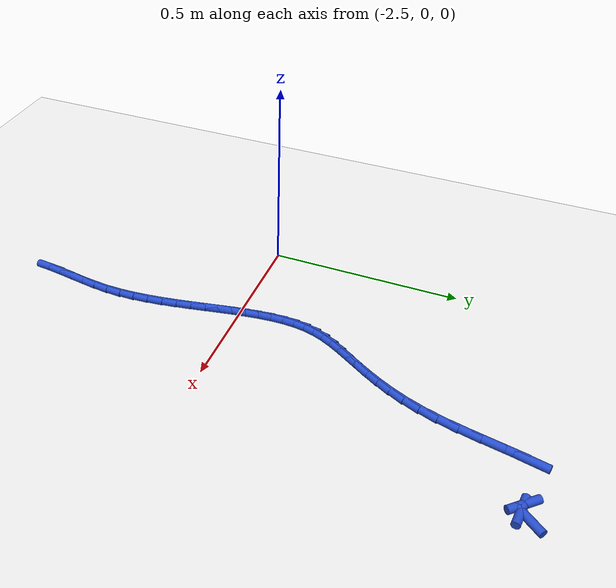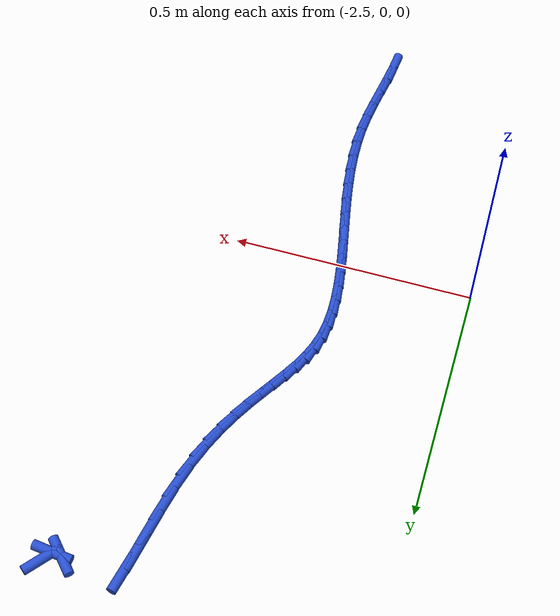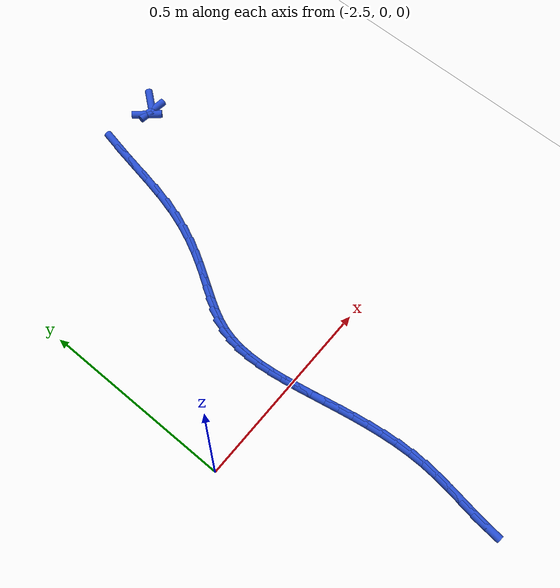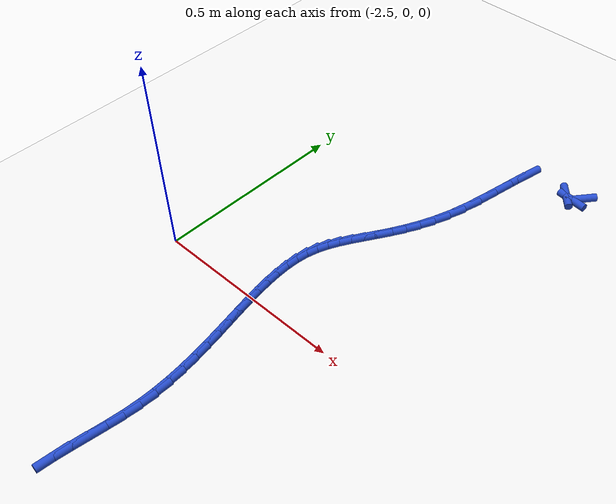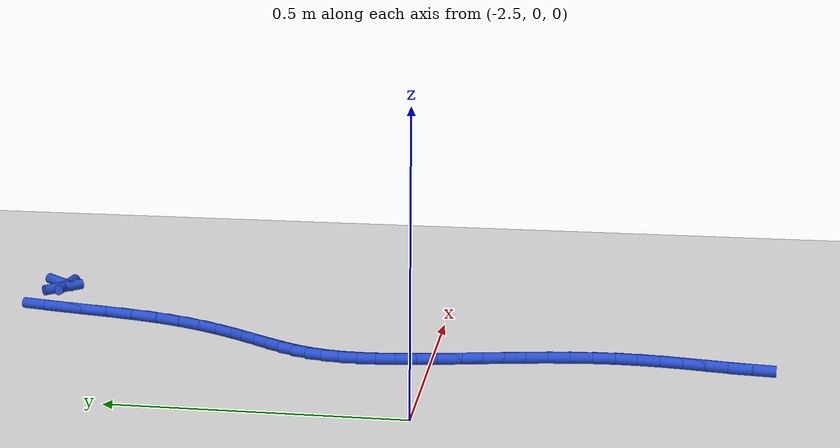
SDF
<sdf version="1.6">
 <world name="default">
  <model name="ground_plane">
   <static>1</static>
   <link name="link">
    <collision name="collision">
     <geometry><plane><normal>0 0 1</normal><size>100 100</size></plane></geometry>
     <surface><friction><ode><mu>100</mu><mu2>50</mu2></ode></friction></surface>
    </collision>
    <visual name="visual">
     <cast_shadows>0</cast_shadows>
     <geometry><plane><normal>0 0 1</normal><size>100 100</size></plane></geometry>
     <material>
      <script><uri>file://media/materials/scripts/gazebo.material</uri><name>Gazebo/WhiteGlow</name></script>
     </material>
    </visual>
   </link>
  </model>
  <model name="line">
   <link name="link_96">
    <pose>-1.8639385635588532 0.7850963636367804 0.01 0 1.57 0.8928345228396772</pose>
    <collision name="collision">
     <geometry><cylinder><radius>0.01</radius><length>0.08</length></cylinder></geometry>
    </collision>
    <visual name="visual">
     <material>
      <script><name>Gazebo/Blue</name><uri>file://media/materials/scripts/gazebo.material</uri></script>
     </material>
     <geometry><cylinder><radius>0.01</radius><length>0.08</length></cylinder></geometry>
    </visual>
   </link>
   <link name="link_97">
    <pose>-1.8784808262917239 0.7670380783018171 0.01 0 1.57 -0.11351821959854738</pose>
    <collision name="collision">
     <geometry><cylinder><radius>0.01</radius><length>0.08</length></cylinder></geometry>
    </collision>
    <visual name="visual">
     <material>
      <script><name>Gazebo/Blue</name><uri>file://media/materials/scripts/gazebo.material</uri></script>
     </material>
     <geometry><cylinder><radius>0.01</radius><length>0.08</length></cylinder></geometry>
    </visual>
   </link>
   <link name="link_98">
    <pose>-1.8964357771530156 0.7690850927928266 0.01 0 1.57 -0.8301115718260607</pose>
    <collision name="collision">
     <geometry><cylinder><radius>0.01</radius><length>0.08</length></cylinder></geometry>
    </collision>
    <visual name="visual">
     <material>
      <script><name>Gazebo/Blue</name><uri>file://media/materials/scripts/gazebo.material</uri></script>
     </material>
     <geometry><cylinder><radius>0.01</radius><length>0.08</length></cylinder></geometry>
    </visual>
   </link>
   <link name="link_105">
    <pose>-2.015662917558142 0.7686540159799391 0.01 0 1.57 1.3652932069871788</pose>
    <collision name="collision">
     <geometry><cylinder><radius>0.01</radius><length>0.08</length></cylinder></geometry>
    </collision>
    <visual name="visual">
     <material>
      <script><name>Gazebo/Blue</name><uri>file://media/materials/scripts/gazebo.material</uri></script>
     </material>
     <geometry><cylinder><radius>0.01</radius><length>0.08</length></cylinder></geometry>
    </visual>
   </link>
   <link name="link_106">
    <pose>-2.025252193785814 0.7226503119816704 0.01 0 1.57 1.387893207308037</pose>
    <collision name="collision">
     <geometry><cylinder><radius>0.01</radius><length>0.08</length></cylinder></geometry>
    </collision>
    <visual name="visual">
     <material>
      <script><name>Gazebo/Blue</name><uri>file://media/materials/scripts/gazebo.material</uri></script>
     </material>
     <geometry><cylinder><radius>0.01</radius><length>0.08</length></cylinder></geometry>
    </visual>
   </link>
   <link name="link_107">
    <pose>-2.034670021203253 0.6717349828615861 0.01 0 1.57 1.3851350978244776</pose>
    <collision name="collision">
     <geometry><cylinder><radius>0.01</radius><length>0.08</length></cylinder></geometry>
    </collision>
    <visual name="visual">
     <material>
      <script><name>Gazebo/Blue</name><uri>file://media/materials/scripts/gazebo.material</uri></script>
     </material>
     <geometry><cylinder><radius>0.01</radius><length>0.08</length></cylinder></geometry>
    </visual>
   </link>
   <link name="link_108">
    <pose>-2.0446121412748073 0.6188018988589968 0.01 0 1.57 1.3595727891873166</pose>
    <collision name="collision">
     <geometry><cylinder><radius>0.01</radius><length>0.08</length></cylinder></geometry>
    </collision>
    <visual name="visual">
     <material>
      <script><name>Gazebo/Blue</name><uri>file://media/materials/scripts/gazebo.material</uri></script>
     </material>
     <geometry><cylinder><radius>0.01</radius><length>0.08</length></cylinder></geometry>
    </visual>
   </link>
   <link name="link_109">
    <pose>-2.0557742954648264 0.5667449302132156 0.01 0 1.57 1.3070940769769754</pose>
    <collision name="collision">
     <geometry><cylinder><radius>0.01</radius><length>0.08</length></cylinder></geometry>
    </collision>
    <visual name="visual">
     <material>
      <script><name>Gazebo/Blue</name><uri>file://media/materials/scripts/gazebo.material</uri></script>
     </material>
     <geometry><cylinder><radius>0.01</radius><length>0.08</length></cylinder></geometry>
    </visual>
   </link>
   <link name="link_110">
    <pose>-2.0688292708405354 0.5183913279459584 0.01 0 1.57 1.2374477477601342</pose>
    <collision name="collision">
     <geometry><cylinder><radius>0.01</radius><length>0.08</length></cylinder></geometry>
    </collision>
    <visual name="visual">
     <material>
      <script><name>Gazebo/Blue</name><uri>file://media/materials/scripts/gazebo.material</uri></script>
     </material>
     <geometry><cylinder><radius>0.01</radius><length>0.08</length></cylinder></geometry>
    </visual>
   </link>
   <link name="link_111">
    <pose>-2.0838820067673876 0.47492031157534953 0.01 0 1.57 1.170297144739577</pose>
    <collision name="collision">
     <geometry><cylinder><radius>0.01</radius><length>0.08</length></cylinder></geometry>
    </collision>
    <visual name="visual">
     <material>
      <script><name>Gazebo/Blue</name><uri>file://media/materials/scripts/gazebo.material</uri></script>
     </material>
     <geometry><cylinder><radius>0.01</radius><length>0.08</length></cylinder></geometry>
    </visual>
   </link>
   <link name="link_112">
    <pose>-2.1004465038930054 0.4357960533970991 0.01 0 1.57 1.1101819898915068</pose>
    <collision name="collision">
     <geometry><cylinder><radius>0.01</radius><length>0.08</length></cylinder></geometry>
    </collision>
    <visual name="visual">
     <material>
      <script><name>Gazebo/Blue</name><uri>file://media/materials/scripts/gazebo.material</uri></script>
     </material>
     <geometry><cylinder><radius>0.01</radius><length>0.08</length></cylinder></geometry>
    </visual>
   </link>
   <link name="link_113">
    <pose>-2.1180091879644953 0.400402696669882 0.01 0 1.57 1.0609817832662332</pose>
    <collision name="collision">
     <geometry><cylinder><radius>0.01</radius><length>0.08</length></cylinder></geometry>
    </collision>
    <visual name="visual">
     <material>
      <script><name>Gazebo/Blue</name><uri>file://media/materials/scripts/gazebo.material</uri></script>
     </material>
     <geometry><cylinder><radius>0.01</radius><length>0.08</length></cylinder></geometry>
    </visual>
   </link>
   <link name="link_114">
    <pose>-2.1360564847289645 0.368124384652371 0.01 0 1.57 1.026660157019274</pose>
    <collision name="collision">
     <geometry><cylinder><radius>0.01</radius><length>0.08</length></cylinder></geometry>
    </collision>
    <visual name="visual">
     <material>
      <script><name>Gazebo/Blue</name><uri>file://media/materials/scripts/gazebo.material</uri></script>
     </material>
     <geometry><cylinder><radius>0.01</radius><length>0.08</length></cylinder></geometry>
    </visual>
   </link>
   <link name="link_115">
    <pose>-2.154074819933521 0.33834526060323944 0.01 0 1.57 1.0111426375464756</pose>
    <collision name="collision">
     <geometry><cylinder><radius>0.01</radius><length>0.08</length></cylinder></geometry>
    </collision>
    <visual name="visual">
     <material>
      <script><name>Gazebo/Blue</name><uri>file://media/materials/scripts/gazebo.material</uri></script>
     </material>
     <geometry><cylinder><radius>0.01</radius><length>0.08</length></cylinder></geometry>
    </visual>
   </link>
   <link name="link_116">
    <pose>-2.171550619325272 0.3104494677811617 0.01 0 1.57 1.0182420953371047</pose>
    <collision name="collision">
     <geometry><cylinder><radius>0.01</radius><length>0.08</length></cylinder></geometry>
    </collision>
    <visual name="visual">
     <material>
      <script><name>Gazebo/Blue</name><uri>file://media/materials/scripts/gazebo.material</uri></script>
     </material>
     <geometry><cylinder><radius>0.01</radius><length>0.08</length></cylinder></geometry>
    </visual>
   </link>
   <link name="link_117">
    <pose>-2.1879703086513245 0.283821149444811 0.01 0 1.57 1.05147099999991</pose>
    <collision name="collision">
     <geometry><cylinder><radius>0.01</radius><length>0.08</length></cylinder></geometry>
    </collision>
    <visual name="visual">
     <material>
      <script><name>Gazebo/Blue</name><uri>file://media/materials/scripts/gazebo.material</uri></script>
     </material>
     <geometry><cylinder><radius>0.01</radius><length>0.08</length></cylinder></geometry>
    </visual>
   </link>
   <link name="link_118">
    <pose>-2.2028203136587856 0.2578444488528609 0.01 0 1.57 1.113451115075047</pose>
    <collision name="collision">
     <geometry><cylinder><radius>0.01</radius><length>0.08</length></cylinder></geometry>
    </collision>
    <visual name="visual">
     <material>
      <script><name>Gazebo/Blue</name><uri>file://media/materials/scripts/gazebo.material</uri></script>
     </material>
     <geometry><cylinder><radius>0.01</radius><length>0.08</length></cylinder></geometry>
    </visual>
   </link>
   <link name="link_119">
    <pose>-2.2155870600947623 0.23190350926398454 0.01 0 1.57 1.2046242030009469</pose>
    <collision name="collision">
     <geometry><cylinder><radius>0.01</radius><length>0.08</length></cylinder></geometry>
    </collision>
    <visual name="visual">
     <material>
      <script><name>Gazebo/Blue</name><uri>file://media/materials/scripts/gazebo.material</uri></script>
     </material>
     <geometry><cylinder><radius>0.01</radius><length>0.08</length></cylinder></geometry>
    </visual>
   </link>
   <link name="link_120">
    <pose>-2.2257569737063623 0.20538247393685627 0.01 0 1.57 1.3202456615029452</pose>
    <collision name="collision">
     <geometry><cylinder><radius>0.01</radius><length>0.08</length></cylinder></geometry>
    </collision>
    <visual name="visual">
     <material>
      <script><name>Gazebo/Blue</name><uri>file://media/materials/scripts/gazebo.material</uri></script>
     </material>
     <geometry><cylinder><radius>0.01</radius><length>0.08</length></cylinder></geometry>
    </visual>
   </link>
   <link name="link_121">
    <pose>-2.232844789168771 0.1776879676041346 0.01 0 1.57 1.4345203257712575</pose>
    <collision name="collision">
     <geometry><cylinder><radius>0.01</radius><length>0.08</length></cylinder></geometry>
    </collision>
    <visual name="visual">
     <material>
      <script><name>Gazebo/Blue</name><uri>file://media/materials/scripts/gazebo.material</uri></script>
     </material>
     <geometry><cylinder><radius>0.01</radius><length>0.08</length></cylinder></geometry>
    </visual>
   </link>
   <link name="link_122">
    <pose>-2.2368336907803386 0.1485986332532084 0.01 0 1.57 1.5294313198821732</pose>
    <collision name="collision">
     <geometry><cylinder><radius>0.01</radius><length>0.08</length></cylinder></geometry>
    </collision>
    <visual name="visual">
     <material>
      <script><name>Gazebo/Blue</name><uri>file://media/materials/scripts/gazebo.material</uri></script>
     </material>
     <geometry><cylinder><radius>0.01</radius><length>0.08</length></cylinder></geometry>
    </visual>
   </link>
   <link name="link_123">
    <pose>-2.2380918942506387 0.1181988857336575 0.01 0 1.57 -1.536244300835391</pose>
    <collision name="collision">
     <geometry><cylinder><radius>0.01</radius><length>0.08</length></cylinder></geometry>
    </collision>
    <visual name="visual">
     <material>
      <script><name>Gazebo/Blue</name><uri>file://media/materials/scripts/gazebo.material</uri></script>
     </material>
     <geometry><cylinder><radius>0.01</radius><length>0.08</length></cylinder></geometry>
    </visual>
   </link>
   <link name="link_124">
    <pose>-2.236999039191082 0.0865822121619912 0.01 0 1.57 -1.4774743132335906</pose>
    <collision name="collision">
     <geometry><cylinder><radius>0.01</radius><length>0.08</length></cylinder></geometry>
    </collision>
    <visual name="visual">
     <material>
      <script><name>Gazebo/Blue</name><uri>file://media/materials/scripts/gazebo.material</uri></script>
     </material>
     <geometry><cylinder><radius>0.01</radius><length>0.08</length></cylinder></geometry>
    </visual>
   </link>
   <link name="link_125">
    <pose>-2.233934765213081 0.05384209965471808 0.01 0 1.57 -1.4337849765802613</pose>
    <collision name="collision">
     <geometry><cylinder><radius>0.01</radius><length>0.08</length></cylinder></geometry>
    </collision>
    <visual name="visual">
     <material>
      <script><name>Gazebo/Blue</name><uri>file://media/materials/scripts/gazebo.material</uri></script>
     </material>
     <geometry><cylinder><radius>0.01</radius><length>0.08</length></cylinder></geometry>
    </visual>
   </link>
   <link name="link_126">
    <pose>-2.229278711928046 0.020072035328349298 0.01 0 1.57 -1.4033000985307424</pose>
    <collision name="collision">
     <geometry><cylinder><radius>0.01</radius><length>0.08</length></cylinder></geometry>
    </collision>
    <visual name="visual">
     <material>
      <script><name>Gazebo/Blue</name><uri>file://media/materials/scripts/gazebo.material</uri></script>
     </material>
     <geometry><cylinder><radius>0.01</radius><length>0.08</length></cylinder></geometry>
    </visual>
   </link>
   <link name="link_127">
    <pose>-2.22341051894739 -0.014634493700606621 0.01 0 1.57 -1.3844930795048427</pose>
    <collision name="collision">
     <geometry><cylinder><radius>0.01</radius><length>0.08</length></cylinder></geometry>
    </collision>
    <visual name="visual">
     <material>
      <script><name>Gazebo/Blue</name><uri>file://media/materials/scripts/gazebo.material</uri></script>
     </material>
     <geometry><cylinder><radius>0.01</radius><length>0.08</length></cylinder></geometry>
    </visual>
   </link>
   <link name="link_128">
    <pose>-2.2167098258825235 -0.05018400031564024 0.01 0 1.57 -1.3762167335835287</pose>
    <collision name="collision">
     <geometry><cylinder><radius>0.01</radius><length>0.08</length></cylinder></geometry>
    </collision>
    <visual name="visual">
     <material>
      <script><name>Gazebo/Blue</name><uri>file://media/materials/scripts/gazebo.material</uri></script>
     </material>
     <geometry><cylinder><radius>0.01</radius><length>0.08</length></cylinder></geometry>
    </visual>
   </link>
   <link name="link_129">
    <pose>-2.2095562723448583 -0.08648299740024216 0.01 0 1.57 -1.377677411937206</pose>
    <collision name="collision">
     <geometry><cylinder><radius>0.01</radius><length>0.08</length></cylinder></geometry>
    </collision>
    <visual name="visual">
     <material>
      <script><name>Gazebo/Blue</name><uri>file://media/materials/scripts/gazebo.material</uri></script>
     </material>
     <geometry><cylinder><radius>0.01</radius><length>0.08</length></cylinder></geometry>
    </visual>
   </link>
   <link name="link_130">
    <pose>-2.2023294979458066 -0.12343799783790302 0.01 0 1.57 -1.3883899754814253</pose>
    <collision name="collision">
     <geometry><cylinder><radius>0.01</radius><length>0.08</length></cylinder></geometry>
    </collision>
    <visual name="visual">
     <material>
      <script><name>Gazebo/Blue</name><uri>file://media/materials/scripts/gazebo.material</uri></script>
     </material>
     <geometry><cylinder><radius>0.01</radius><length>0.08</length></cylinder></geometry>
    </visual>
   </link>
   <link name="link_131">
    <pose>-2.1954091422967794 -0.16095551451211332 0.01 0 1.57 -1.4081279057040086</pose>
    <collision name="collision">
     <geometry><cylinder><radius>0.01</radius><length>0.08</length></cylinder></geometry>
    </collision>
    <visual name="visual">
     <material>
      <script><name>Gazebo/Blue</name><uri>file://media/materials/scripts/gazebo.material</uri></script>
     </material>
     <geometry><cylinder><radius>0.01</radius><length>0.08</length></cylinder></geometry>
    </visual>
   </link>
   <link name="link_132">
    <pose>-2.189174845009187 -0.1989420603063647 0.01 0 1.57 -1.4368708496757563</pose>
    <collision name="collision">
     <geometry><cylinder><radius>0.01</radius><length>0.08</length></cylinder></geometry>
    </collision>
    <visual name="visual">
     <material>
      <script><name>Gazebo/Blue</name><uri>file://media/materials/scripts/gazebo.material</uri></script>
     </material>
     <geometry><cylinder><radius>0.01</radius><length>0.08</length></cylinder></geometry>
    </visual>
   </link>
   <link name="link_133">
    <pose>-2.1840062456944436 -0.23730414810414574 0.01 0 1.57 -1.4747454266611173</pose>
    <collision name="collision">
     <geometry><cylinder><radius>0.01</radius><length>0.08</length></cylinder></geometry>
    </collision>
    <visual name="visual">
     <material>
      <script><name>Gazebo/Blue</name><uri>file://media/materials/scripts/gazebo.material</uri></script>
     </material>
     <geometry><cylinder><radius>0.01</radius><length>0.08</length></cylinder></geometry>
    </visual>
   </link>
   <link name="link_134">
    <pose>-2.180282983963959 -0.275948290788948 0.01 0 1.57 -1.5219515610564225</pose>
    <collision name="collision">
     <geometry><cylinder><radius>0.01</radius><length>0.08</length></cylinder></geometry>
    </collision>
    <visual name="visual">
     <material>
      <script><name>Gazebo/Blue</name><uri>file://media/materials/scripts/gazebo.material</uri></script>
     </material>
     <geometry><cylinder><radius>0.01</radius><length>0.08</length></cylinder></geometry>
    </visual>
   </link>
   <link name="link_135">
    <pose>-2.178384699429145 -0.3147810012442622 0.01 0 1.57 1.5629272455918293</pose>
    <collision name="collision">
     <geometry><cylinder><radius>0.01</radius><length>0.08</length></cylinder></geometry>
    </collision>
    <visual name="visual">
     <material>
      <script><name>Gazebo/Blue</name><uri>file://media/materials/scripts/gazebo.material</uri></script>
     </material>
     <geometry><cylinder><radius>0.01</radius><length>0.08</length></cylinder></geometry>
    </visual>
   </link>
   <link name="link_136">
    <pose>-2.1786910317014136 -0.35370879235357877 0.01 0 1.57 1.5000514664035358</pose>
    <collision name="collision">
     <geometry><cylinder><radius>0.01</radius><length>0.08</length></cylinder></geometry>
    </collision>
    <visual name="visual">
     <material>
      <script><name>Gazebo/Blue</name><uri>file://media/materials/scripts/gazebo.material</uri></script>
     </material>
     <geometry><cylinder><radius>0.01</radius><length>0.08</length></cylinder></geometry>
    </visual>
   </link>
   <link name="link_137">
    <pose>-2.181449338064436 -0.3926332200605127 0.01 0 1.57 1.4516233448208937</pose>
    <collision name="collision">
     <geometry><cylinder><radius>0.01</radius><length>0.08</length></cylinder></geometry>
    </collision>
    <visual name="visual">
     <material>
      <script><name>Gazebo/Blue</name><uri>file://media/materials/scripts/gazebo.material</uri></script>
     </material>
     <geometry><cylinder><radius>0.01</radius><length>0.08</length></cylinder></geometry>
    </visual>
   </link>
   <link name="link_138">
    <pose>-2.186094326975815 -0.4314253883848294 0.01 0 1.57 1.4249528339804725</pose>
    <collision name="collision">
     <geometry><cylinder><radius>0.01</radius><length>0.08</length></cylinder></geometry>
    </collision>
    <visual name="visual">
     <material>
      <script><name>Gazebo/Blue</name><uri>file://media/materials/scripts/gazebo.material</uri></script>
     </material>
     <geometry><cylinder><radius>0.01</radius><length>0.08</length></cylinder></geometry>
    </visual>
   </link>
   <link name="link_139">
    <pose>-2.191752311799446 -0.4699448450336445 0.01 0 1.57 1.4198342545852902</pose>
    <collision name="collision">
     <geometry><cylinder><radius>0.01</radius><length>0.08</length></cylinder></geometry>
    </collision>
    <visual name="visual">
     <material>
      <script><name>Gazebo/Blue</name><uri>file://media/materials/scripts/gazebo.material</uri></script>
     </material>
     <geometry><cylinder><radius>0.01</radius><length>0.08</length></cylinder></geometry>
    </visual>
   </link>
   <link name="link_140">
    <pose>-2.1975490151609995 -0.5080511155776791 0.01 0 1.57 1.4368288002242164</pose>
    <collision name="collision">
     <geometry><cylinder><radius>0.01</radius><length>0.08</length></cylinder></geometry>
    </collision>
    <visual name="visual">
     <material>
      <script><name>Gazebo/Blue</name><uri>file://media/materials/scripts/gazebo.material</uri></script>
     </material>
     <geometry><cylinder><radius>0.01</radius><length>0.08</length></cylinder></geometry>
    </visual>
   </link>
   <link name="link_141">
    <pose>-2.202610159686144 -0.5456037255876516 0.01 0 1.57 1.477431796651566</pose>
    <collision name="collision">
     <geometry><cylinder><radius>0.01</radius><length>0.08</length></cylinder></geometry>
    </collision>
    <visual name="visual">
     <material>
      <script><name>Gazebo/Blue</name><uri>file://media/materials/scripts/gazebo.material</uri></script>
     </material>
     <geometry><cylinder><radius>0.01</radius><length>0.08</length></cylinder></geometry>
    </visual>
   </link>
  </model>
 </world>
</sdf>
